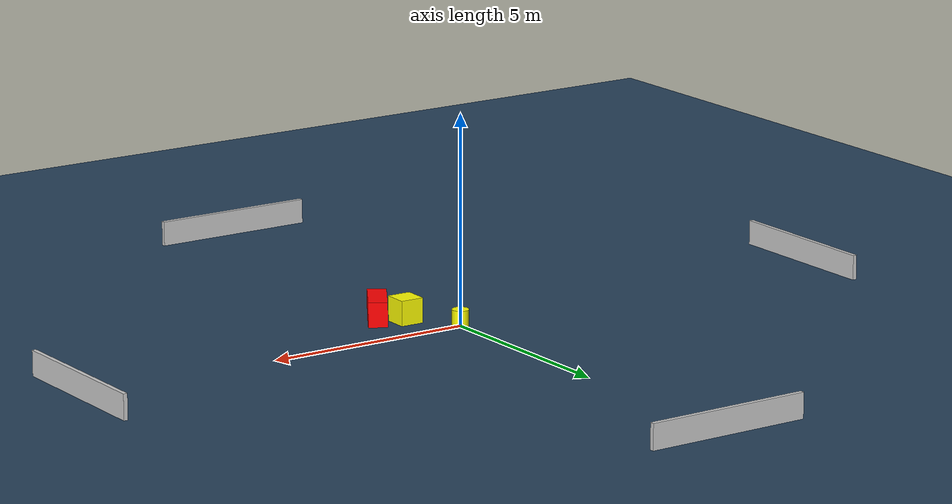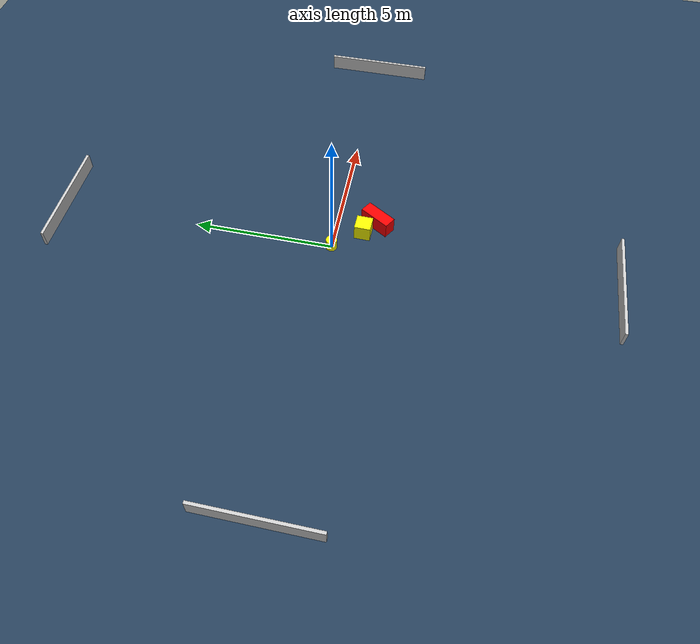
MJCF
<?xml version="1.0" ?>
<mujoco model="generated_environment">
  <option timestep="0.01" integrator="RK4" cone="elliptic"/>
  <default>
    <geom density="1"/>
  </default>
  <asset>
    <texture builtin="gradient" height="3072" name="skybox" rgb1="0.3 0.5 0.7" rgb2="0 0 0" type="skybox" width="512"/>
    <texture builtin="checker" height="300" name="groundplane" rgb1="0.2 0.3 0.4" rgb2="0.1 0.2 0.3" type="2d" width="300"/>
    <material name="groundplane" reflectance="0.2" texrepeat="5 5" texture="groundplane"/>
  </asset>
  <worldbody>
    <light dir="0 0 -1" directional="true" pos="0 0 1.5"/>
    <geom condim="3" friction="0.5 0.005 0.001" material="groundplane" name="floor" pos="0 0 0" size="0 0 0.05" type="plane"/>
    <body name="walls">
      <geom name="wall_1" condim="4" pos="-10.0 0.0 0.3" rgba="0.800000011920929 0.800000011920929 0.800000011920929 1.0" size="0.05 2.0 0.3" type="box"/>
      <geom name="wall_2" condim="4" pos="10.0 0.0 0.3" rgba="0.800000011920929 0.800000011920929 0.800000011920929 1.0" size="0.05 2.0 0.3" type="box"/>
      <geom name="wall_3" condim="4" pos="0.0 -10.0 0.3" rgba="0.800000011920929 0.800000011920929 0.800000011920929 1.0" size="2.0 0.05 0.3" type="box"/>
      <geom name="wall_4" condim="4" pos="0.0 10.0 0.3" rgba="0.800000011920929 0.800000011920929 0.800000011920929 1.0" size="2.0 0.05 0.3" type="box"/>
    </body>
    <body name="robot">
      <joint name="joint_x" type="slide" pos="0 0 0" axis="1 0 0"/>
      <joint name="joint_y" type="slide" pos="0 0 0" axis="0 1 0"/>
      <geom name="robot" type="cylinder" pos="0.0 0.0 0.2" size="0.2 0.2 0.0" mass="5.0" friction="1.0 0.005 0.0001" condim="4" rgba="1.0 1.0 0.0 1.0"/>
    </body>
    <body name="obstacle_1_movable">
      <geom name="obstacle_1_movable" condim="4" pos="0.8491887789682842 -0.9960189049505441 0.3" euler="0 0 88.70314916089869" friction="0.0 0.005 0.001" rgba="1.0 1.0 0.0 1.0" size="0.2886086029888505 0.2868256287244818 0.3" type="box" mass="0.1"/>
      <joint type="free"/>
    </body>
    <body name="obstacle_2_static">
      <geom name="obstacle_2_static" condim="4" pos="1.3430707460244258 -1.427103181144469 0.3" euler="0 0 148.24097344999075" friction="0.0 0.005 0.001" rgba="1.0 0.0 0.0 1.0" size="0.22484222329123194 0.5803943402367235 0.3" type="box"/>
    </body>
  </worldbody>
  <actuator>
    <motor name="actuator_x" joint="joint_x" gear="1" ctrlrange="-1 1"/>
    <motor name="actuator_y" joint="joint_y" gear="1" ctrlrange="-1 1"/>
  </actuator>
</mujoco>
